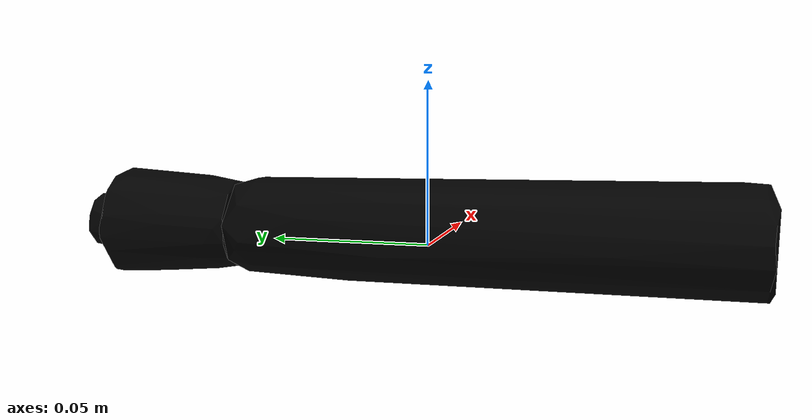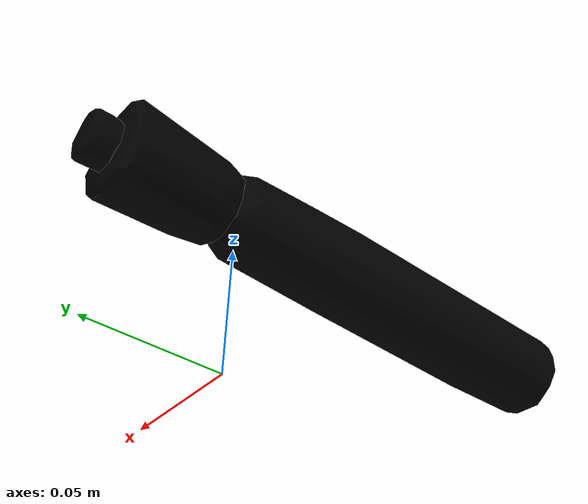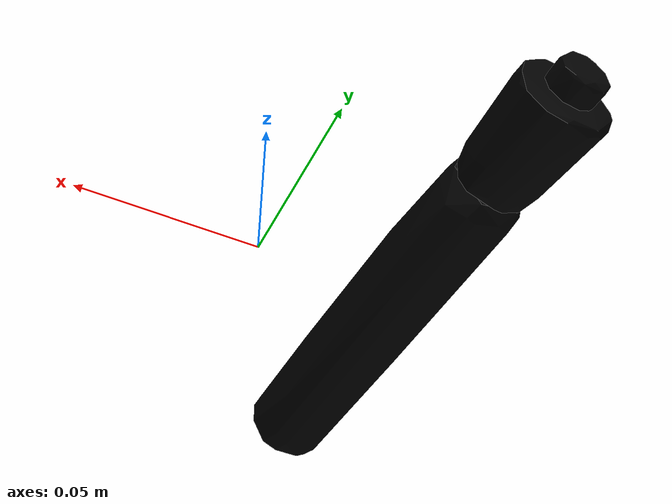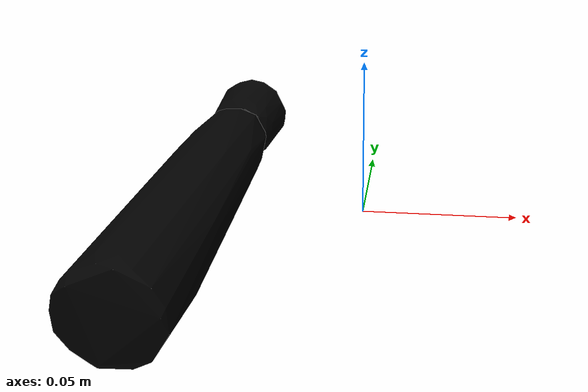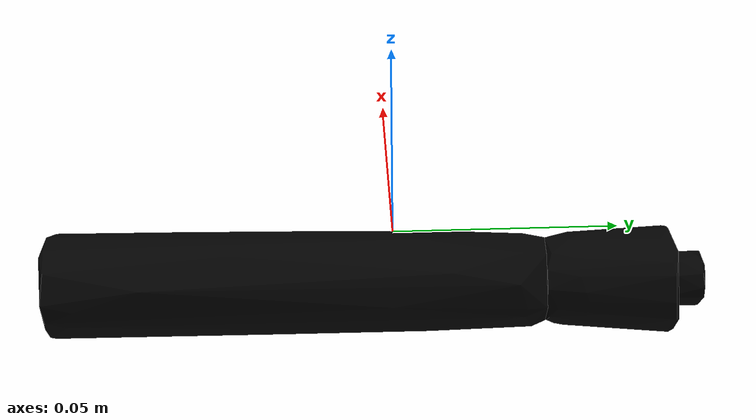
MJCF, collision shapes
<mujoco model="marker">
  <asset>
    <mesh name="marker_vis" file="meshes/marker_vis.obj" scale="1.4 1.4 1.4" />
    <mesh name="marker_mesh0" file="meshes/marker_parts/marker0.obj" scale="1.4 1.4 1.4" />
    <mesh name="marker_mesh1" file="meshes/marker_parts/marker1.obj" scale="1.4 1.4 1.4" />
    <mesh name="marker_mesh2" file="meshes/marker_parts/marker2.obj" scale="1.4 1.4 1.4" />
    <texture name="marker_tex" file="textures/marker.png" type="2d" />
    <material name="marker_mat" texture="marker_tex" texuniform="true" specular="0.2" shininess="0.3" reflectance="0.5" />
  </asset>

  <worldbody>
    <body>
      <body name="object">
        <geom name="body"
              mesh="marker_vis" type="mesh" material="marker_mat" contype="0" conaffinity="0" group="1" />
        <geom mesh="marker_mesh0" type="mesh" solimp="0.998 0.998 0.001" solref="0.001 1"
              density="1300" friction="10.0 10.0 10.0" material="marker_mat"
              group="0" condim="4" contype="1" conaffinity="1" rgba="0 0 0 0"/>
        <geom mesh="marker_mesh1" type="mesh" solimp="0.998 0.998 0.001" solref="0.001 1"
              density="1300" friction="10.0 10.0 10.0" material="marker_mat"
              group="0" condim="4" contype="1" conaffinity="1" rgba="0 0 0 0"/>
        <geom mesh="marker_mesh2" type="mesh" solimp="0.998 0.998 0.001" solref="0.001 1"
              density="1300" friction="10.0 10.0 10.0" material="marker_mat"
              group="0" condim="4" contype="1" conaffinity="1" rgba="0 0 0 0"/>
        <site name="grasp_0" pos="-0.0501 0.0035 0.0142" quat="-0.0289 -0.7065 0.7065 0.0289" size="0.005" rgba="0 1 0 0.5"/>
        <site name="grasp_1" pos="-0.0474 0.0627 0.0140" quat="-0.0491 -0.5861 0.7988 0.1262" size="0.005" rgba="0 1 0 0.5"/>
      </body>
      <site name="horizontal_radius_site" pos="0 0.06 0" size="0.005" rgba="0 0 0 0"/>
      <site name="top_site" pos="0 0 0.009" size="0.005" rgba="0 0 0 0"/>
      <site name="bottom_site" pos="0 0 -0.009" size="0.005" rgba="0 0 0 0"/>
    </body>
  </worldbody>
</mujoco>
